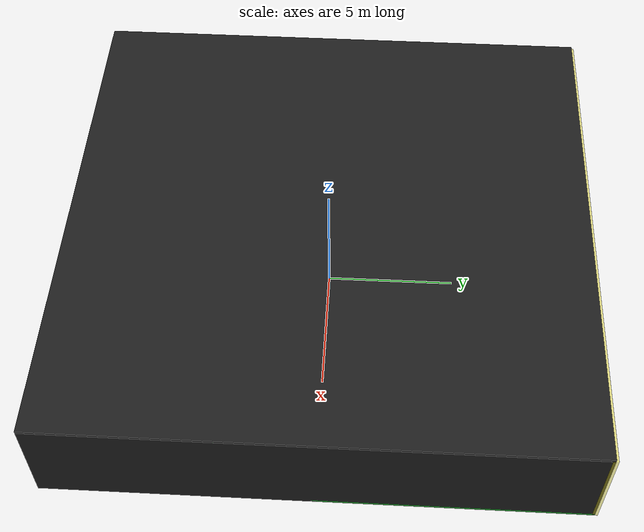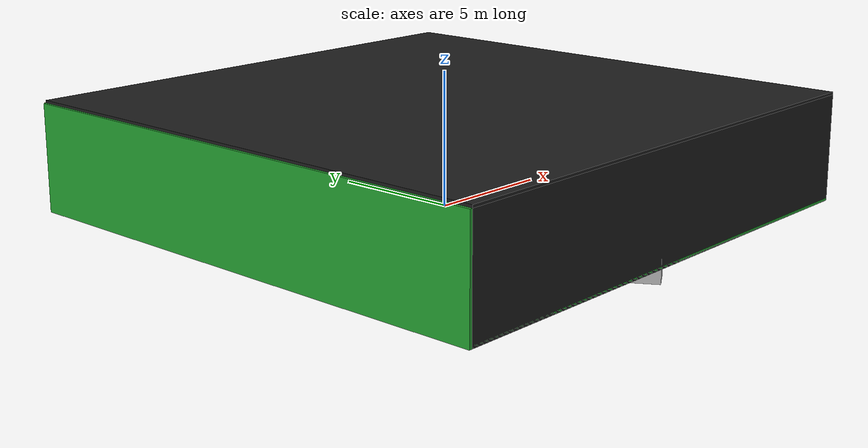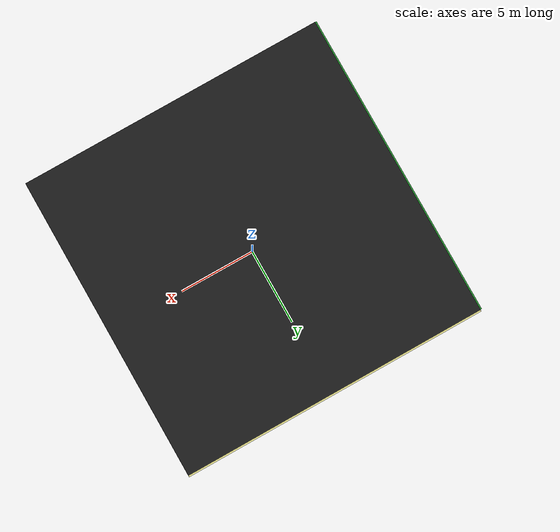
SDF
<sdf version="1.4">
 <world name="default">
  <physics type="ode">
   <max_step_size>0.001</max_step_size>
   <real_time_factor>1</real_time_factor>
   <real_time_update_rate>1000</real_time_update_rate>
   <gravity>0 0 -9.8</gravity>
  </physics>
  <scene><ambient>0.4 0.4 0.4 1</ambient><background>0.7 0.7 0.7 1</background><shadows>1</shadows></scene>
  <model name="Surrounding">
   <static>1</static>
   <link name="Ceiling">
    <collision name="Ceiling_Collision"><geometry><box><size>20 20 0.1</size></box></geometry></collision>
    <visual name="Ceiling_Visual">
     <geometry><box><size>20 20 0.1</size></box></geometry>
     <material>
      <script><uri>file://media/materials/scripts/gazebo.material</uri><name>Gazebo/FlatBlack</name></script>
     </material>
    </visual>
    <pose>0 0 4.05 0 0 0</pose>
   </link>
   <link name="Wall_South">
    <collision name="Wall_South_Collision">
     <geometry><box><size>20 0 4</size></box></geometry>
     <pose>0 0 2 0 -0 0</pose>
    </collision>
    <visual name="Wall_South_Visual">
     <pose>0 0 2 0 -0 0</pose>
     <geometry><box><size>20 0 4</size></box></geometry>
     <material>
      <script><uri>file://media/materials/scripts/gazebo.material</uri><name>Gazebo/FlatBlack</name></script>
     </material>
    </visual>
    <velocity_decay><linear>0</linear><angular>0</angular></velocity_decay>
    <pose>0 -10 0 0 -0 0</pose>
   </link>
   <link name="Wall_East">
    <collision name="Wall_21_Collision">
     <geometry><box><size>20 0 4</size></box></geometry>
     <pose>0 0 2 0 -0 0</pose>
    </collision>
    <visual name="Wall_21_Visual">
     <pose>0 0 2 0 -0 0</pose>
     <geometry><box><size>20 0 4</size></box></geometry>
     <material>
      <script><uri>file://media/materials/scripts/gazebo.material</uri><name>Gazebo/FlatBlack</name></script>
     </material>
    </visual>
    <velocity_decay><linear>0</linear><angular>0</angular></velocity_decay>
    <pose>10 0 0 0 -0 1.5708</pose>
   </link>
   <link name="Wall_North">
    <collision name="Wall_22_Collision">
     <geometry><box><size>20 0.2 4</size></box></geometry>
     <pose>0 0 2 0 -0 0</pose>
    </collision>
    <visual name="Wall_22_Visual">
     <pose>0 0 2 0 -0 0</pose>
     <geometry><box><size>20 0.2 4</size></box></geometry>
     <material>
      <script>
       <uri>file://media/materials/scripts/gazebo.material</uri>
       <name>Gazebo/YellowTransparent</name>
      </script>
     </material>
    </visual>
    <velocity_decay><linear>0</linear><angular>0</angular></velocity_decay>
    <pose>0 10 0 0 -0 0</pose>
   </link>
   <link name="Wall_West">
    <collision name="Wall_23_Collision">
     <geometry><box><size>20 0.2 4</size></box></geometry>
     <pose>0 0 2 0 -0 0</pose>
    </collision>
    <visual name="Wall_23_Visual">
     <pose>0 0 2 0 -0 0</pose>
     <geometry><box><size>20 0.2 4</size></box></geometry>
     <material>
      <script><uri>file://media/materials/scripts/gazebo.material</uri><name>Gazebo/Green</name></script>
     </material>
    </visual>
    <velocity_decay><linear>0</linear><angular>0</angular></velocity_decay>
    <pose>-10 0 0 0 0 -1.5708</pose>
   </link>
   <link name="Ground_link">
    <collision name="collision">
     <pose>0 0 .05 0 -0 0</pose>
     <geometry><box><size>20 20 0.1</size></box></geometry>
    </collision>
    <visual name="visual">
     <pose>0 0 .05 0 -0 0</pose>
     <geometry><box><size>20 20 0.1</size></box></geometry>
     <material>
      <script><uri>file://media/materials/scripts/gazebo.material</uri><name>Gazebo/Green</name></script>
     </material>
    </visual>
   </link>
   <static>1</static>
  </model>
  <spherical_coordinates>
   <surface_model>EARTH_WGS84</surface_model>
   <latitude_deg>0</latitude_deg>
   <longitude_deg>0</longitude_deg>
   <elevation>0</elevation>
   <heading_deg>0</heading_deg>
  </spherical_coordinates>
  <light name="lightball_0" type="diffuse">
   <diffuse>0.8 0.8 0.8 1</diffuse>
   <specular>0.2 0.2 0.2 1</specular>
   <attenuation>
    <range>100</range>
    <constant>0.7</constant>
    <linear>0.01</linear>
    <quadratic>0.001</quadratic>
   </attenuation>
   <direction>-0.5 0.1 -0.9</direction>
   <pose>9.37434013638 8.00412607659 3.22198894312 0 0 0</pose>
  </light>
  <light name="lightball_1" type="diffuse">
   <diffuse>0.8 0.8 0.8 1</diffuse>
   <specular>0.2 0.2 0.2 1</specular>
   <attenuation>
    <range>100</range>
    <constant>0.7</constant>
    <linear>0.01</linear>
    <quadratic>0.001</quadratic>
   </attenuation>
   <direction>-0.5 0.1 -0.9</direction>
   <pose>-3.16086175018 1.52434728777 1.46074167782 0 0 0</pose>
  </light>
  <light name="lightball_2" type="diffuse">
   <diffuse>0.8 0.8 0.8 1</diffuse>
   <specular>0.2 0.2 0.2 1</specular>
   <attenuation>
    <range>100</range>
    <constant>0.7</constant>
    <linear>0.01</linear>
    <quadratic>0.001</quadratic>
   </attenuation>
   <direction>-0.5 0.1 -0.9</direction>
   <pose>7.53781310795 -1.61527725809 2.70562927141 0 0 0</pose>
  </light>
  <light name="lightball_3" type="diffuse">
   <diffuse>0.8 0.8 0.8 1</diffuse>
   <specular>0.2 0.2 0.2 1</specular>
   <attenuation>
    <range>100</range>
    <constant>0.7</constant>
    <linear>0.01</linear>
    <quadratic>0.001</quadratic>
   </attenuation>
   <direction>-0.5 0.1 -0.9</direction>
   <pose>8.01220215195 6.45959368367 3.1236837902 0 0 0</pose>
  </light>
  <include><uri>model://cabinet</uri><pose>-4.0776963993 4.25267229408 0 0 0 1.18422696636</pose></include>
  <include>
   <uri>model://textured_shapes</uri>
   <pose>-1.44754483056 -8.03482528893 0 0 0 0.542587712122</pose>
  </include>
  <include><uri>model://cabinet</uri><pose>-1.16451801574 -4.5826936019 0 0 0 1.3432060498</pose></include>
  <include>
   <uri>model://construction_cone</uri>
   <pose>-1.5003322623 3.82080367796 0 0 0 1.12401632716</pose>
  </include>
  <include><uri>model://cabinet</uri><pose>1.60032168989 5.27334235326 0 0 0 2.12516902409</pose></include>
  <include>
   <uri>model://construction_cone</uri>
   <pose>6.77138689973 -3.78005705685 0 0 0 2.01318952332</pose>
  </include>
 </world>
</sdf>

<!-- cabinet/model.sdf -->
<sdf version="1.5">
  <model name="cabinet">
    <static>true</static>
    <link name="cabinet_bottom_plate">
      <inertial>
        <pose>0 0 -1 0 0 0</pose>
        <inertia>
          <ixx>2.050000</ixx>
          <ixy>0</ixy>
          <ixz>0</ixz>
          <iyy>2.050000</iyy>
          <iyz>0</iyz>
          <izz>2.050000</izz>
        </inertia>
        <mass>25.000000</mass>
      </inertial>
      <collision name="cabinet_bottom_plate_geom">
        <pose>0 0 0.010000 0 0 0</pose>
        <geometry>
          <box>
            <size>0.450000 0.450000 0.020000</size>
          </box>
        </geometry>
      </collision>
      <visual name="cabinet_bottom_plate_geom_visual">
        <pose>0 0 0.010000 0 0 0</pose>
        <geometry>
          <box>
            <size>0.450000 0.450000 0.020000</size>
          </box>
        </geometry>
        <material>
          <script>
            <uri>model://media/materials/scripts/gazebo.material</uri>
            <name>Gazebo/Wood</name>
          </script>
        </material>
      </visual>
      <collision name="cabinet_bottom_plate_geom_cabinet_back_plate">
        <pose>0.235000 0 0.510000 0 0 0</pose>
        <geometry>
          <box>
            <size>0.020000 0.450000 1.020000</size>
          </box>
        </geometry>
      </collision>
      <visual name="cabinet_bottom_plate_geom_cabinet_back_plate_visual">
        <pose>0.235000 0 0.510000 0 0 0</pose>
        <geometry>
          <box>
            <size>0.020000 0.450000 1.020000</size>
          </box>
        </geometry>
        <material>
          <script>
            <uri>model://media/materials/scripts/gazebo.material</uri>
            <name>Gazebo/Wood</name>
          </script>
        </material>
      </visual>
      <collision name="cabinet_bottom_plate_geom_cabinet_left_plate">
        <pose>0 0.235000 0.510000 0 0 0</pose>
        <geometry>
          <box>
            <size>0.450000 0.020000 1.020000</size>
          </box>
        </geometry>
      </collision>
      <visual name="cabinet_bottom_plate_geom_cabinet_left_plate_visual">
        <pose>0 0.235000 0.510000 0 0 0</pose>
        <geometry>
          <box>
            <size>0.450000 0.020000 1.020000</size>
          </box>
        </geometry>
        <material>
          <script>
            <uri>model://media/materials/scripts/gazebo.material</uri>
            <name>Gazebo/Wood</name>
          </script>
        </material>
      </visual>
      <collision name="cabinet_bottom_plate_geom_cabinet_middle_plate">
        <pose>0 0 0.510000 0 0 0</pose>
        <geometry>
          <box>
            <size>0.450000 0.450000 0.020000</size>
          </box>
        </geometry>
      </collision>
      <visual name="cabinet_bottom_plate_geom_cabinet_middle_plate_visual">
        <pose>0 0 0.510000 0 0 0</pose>
        <geometry>
          <box>
            <size>0.450000 0.450000 0.020000</size>
          </box>
        </geometry>
        <material>
          <script>
            <uri>model://media/materials/scripts/gazebo.material</uri>
            <name>Gazebo/Wood</name>
          </script>
        </material>
      </visual>
      <collision name="cabinet_bottom_plate_geom_cabinet_right_plate">
        <pose>0 -0.235000 0.510000 0 0 0</pose>
        <geometry>
          <box>
            <size>0.450000 0.020000 1.020000</size>
          </box>
        </geometry>
      </collision>
      <visual name="cabinet_bottom_plate_geom_cabinet_right_plate_visual">
        <pose>0 -0.235000 0.510000 0 0 0</pose>
        <geometry>
          <box>
            <size>0.450000 0.020000 1.020000</size>
          </box>
        </geometry>
        <material>
          <script>
            <uri>model://media/materials/scripts/gazebo.material</uri>
            <name>Gazebo/Wood</name>
          </script>
        </material>
      </visual>
      <collision name="cabinet_bottom_plate_geom_cabinet_top_plate">
        <pose>0 0 1.010000 0 0 0</pose>
        <geometry>
          <box>
            <size>0.450000 0.450000 0.020000</size>
          </box>
        </geometry>
      </collision>
      <visual name="cabinet_bottom_plate_geom_cabinet_top_plate_visual">
        <pose>0 0 1.010000 0 0 0</pose>
        <geometry>
          <box>
            <size>0.450000 0.450000 0.020000</size>
          </box>
        </geometry>
        <material>
          <script>
            <uri>model://media/materials/scripts/gazebo.material</uri>
            <name>Gazebo/Wood</name>
          </script>
        </material>
      </visual>
    </link>
  </model>
</sdf>

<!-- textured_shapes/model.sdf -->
<sdf version="1.6">
  <model name="textured_shapes">
    <pose>0 0 0.5 0 0 0</pose>
    <link name="box">
      <pose>0 -1.5 0 0 0 0</pose>
      <collision name="collision">
        <geometry>
          <box>
            <size>1 1 1</size>
          </box>
        </geometry>
      </collision>
      <visual name="visual">
        <geometry>
          <box>
            <size>1 1 1</size>
          </box>
        </geometry>
        <material>
          <script>
            <uri>model://../model_source/models/textured_shapes/materials/scripts</uri>
            <uri>model://../model_source/models/textured_shapes/materials/textures</uri>
            <name>TexturedShape/Squares</name>
          </script>
        </material>
      </visual>
    </link>
    <link name="sphere">
      <collision name="collision">
        <geometry>
          <sphere>
            <radius>0.5</radius>
          </sphere>
        </geometry>
      </collision>
      <visual name="visual">
        <geometry>
          <sphere>
            <radius>0.5</radius>
          </sphere>
        </geometry>
        <material>
          <script>
            <uri>model://../model_source/models/textured_shapes/materials/scripts</uri>
            <uri>model://../model_source/models/textured_shapes/materials/textures</uri>
            <name>TexturedShape/Squares</name>
          </script>
        </material>
      </visual>
    </link>
    <link name="cylinder">
      <pose>0 1.5 0 0 0 0</pose>
      <collision name="collision">
        <geometry>
          <cylinder>
            <radius>0.5</radius>
            <length>1</length>
          </cylinder>
        </geometry>
      </collision>
      <visual name="visual">
        <geometry>
          <cylinder>
            <radius>0.5</radius>
            <length>1</length>
          </cylinder>
        </geometry>
        <material>
          <script>
            <uri>model://../model_source/models/textured_shapes/materials/scripts</uri>
            <uri>model://../model_source/models/textured_shapes/materials/textures</uri>
            <name>TexturedShape/Squares</name>
          </script>
        </material>
      </visual>
    </link>
  </model>
</sdf>

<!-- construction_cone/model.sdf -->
<sdf version="1.5">
  <model name="Construction Cone">
    <link name="link">
      <collision name="collision">
        <geometry>
          <mesh>
            <scale>10 10 10</scale>
            <uri>file://isr-testbed/construction_cone/meshes/construction_cone.dae</uri>
          </mesh>
        </geometry>
      </collision>
      <visual name="visual">
        <geometry>
          <mesh>
            <scale>10 10 10</scale>
            <uri>file://isr-testbed/construction_cone/meshes/construction_cone.dae</uri>
          </mesh>
        </geometry>
      </visual>
    </link>
  </model>
</sdf>
